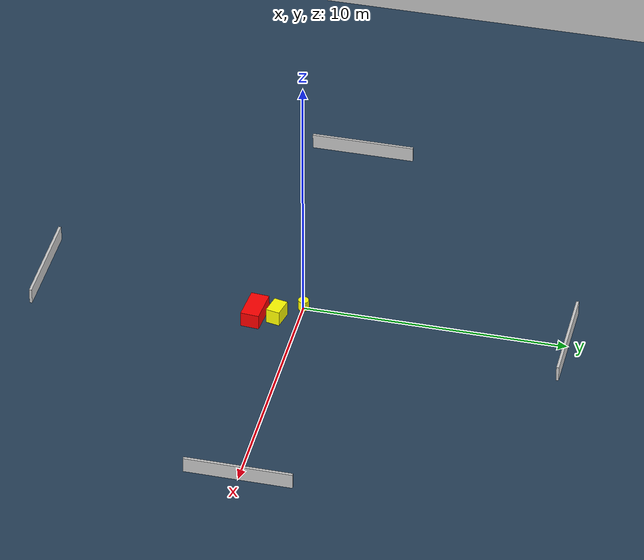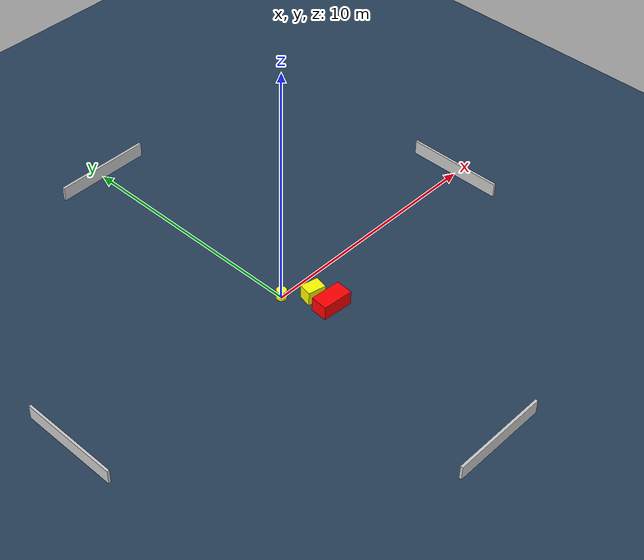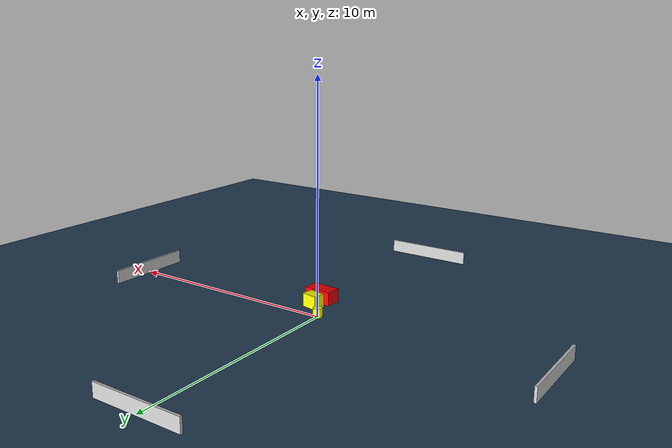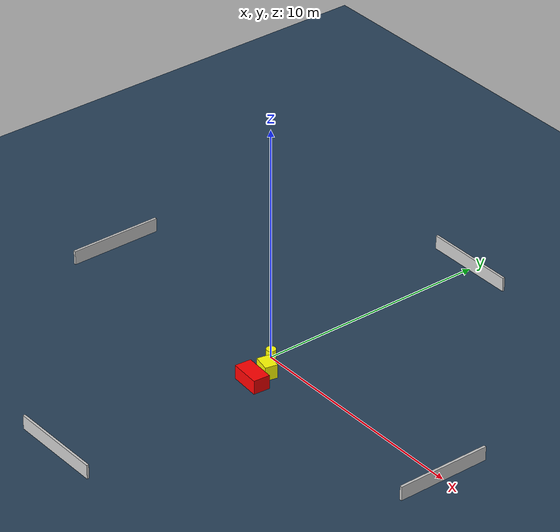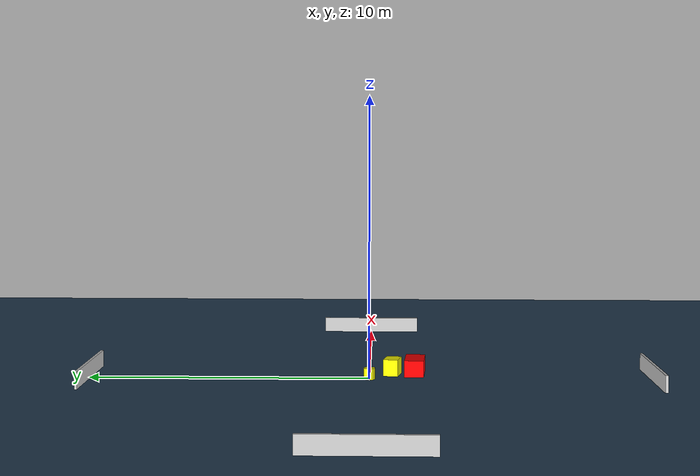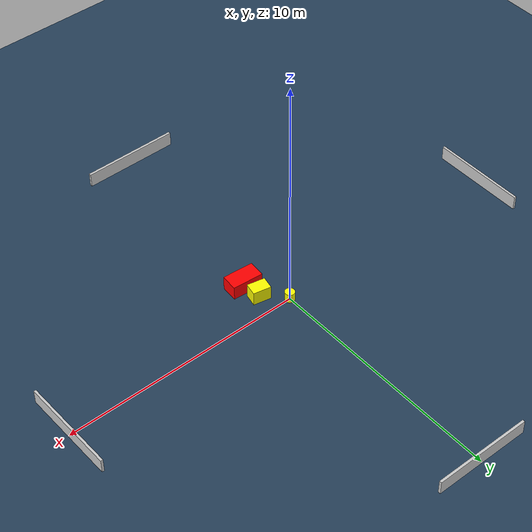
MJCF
<?xml version="1.0" ?>
<mujoco model="generated_environment">
  <option timestep="0.01" integrator="RK4" cone="elliptic"/>
  <default>
    <geom density="1"/>
  </default>
  <asset>
    <texture builtin="gradient" height="3072" name="skybox" rgb1="0.3 0.5 0.7" rgb2="0 0 0" type="skybox" width="512"/>
    <texture builtin="checker" height="300" name="groundplane" rgb1="0.2 0.3 0.4" rgb2="0.1 0.2 0.3" type="2d" width="300"/>
    <material name="groundplane" reflectance="0.2" texrepeat="5 5" texture="groundplane"/>
  </asset>
  <worldbody>
    <light dir="0 0 -1" directional="true" pos="0 0 1.5"/>
    <geom condim="3" friction="0.5 0.005 0.001" material="groundplane" name="floor" pos="0 0 0" size="0 0 0.05" type="plane"/>
    <body name="walls">
      <geom name="wall_1" condim="4" pos="-10.0 0.0 0.3" rgba="0.800000011920929 0.800000011920929 0.800000011920929 1.0" size="0.05 2.0 0.3" type="box"/>
      <geom name="wall_2" condim="4" pos="10.0 0.0 0.3" rgba="0.800000011920929 0.800000011920929 0.800000011920929 1.0" size="0.05 2.0 0.3" type="box"/>
      <geom name="wall_3" condim="4" pos="0.0 -10.0 0.3" rgba="0.800000011920929 0.800000011920929 0.800000011920929 1.0" size="2.0 0.05 0.3" type="box"/>
      <geom name="wall_4" condim="4" pos="0.0 10.0 0.3" rgba="0.800000011920929 0.800000011920929 0.800000011920929 1.0" size="2.0 0.05 0.3" type="box"/>
    </body>
    <body name="robot">
      <joint name="joint_x" type="slide" pos="0 0 0" axis="1 0 0"/>
      <joint name="joint_y" type="slide" pos="0 0 0" axis="0 1 0"/>
      <geom name="robot" type="cylinder" pos="0.0 0.0 0.2" size="0.2 0.2 0.0" mass="5.0" friction="1.0 0.005 0.0001" condim="4" rgba="1.0 1.0 0.0 1.0"/>
    </body>
    <body name="obstacle_1_movable">
      <geom name="obstacle_1_movable" condim="4" pos="0.8073585620002497 -0.825590645687486 0.3" euler="0 0 348.17449607941757" friction="0.0 0.005 0.001" rgba="1.0 1.0 0.0 1.0" size="0.3696521759478837 0.2620488089685723 0.3" type="box" mass="0.1"/>
      <joint type="free"/>
    </body>
    <body name="obstacle_2_static">
      <geom name="obstacle_2_static" condim="4" pos="0.9232629812586248 -1.6328211342745265 0.3" euler="0 0 85.53589398017601" friction="0.0 0.005 0.001" rgba="1.0 0.0 0.0 1.0" size="0.34866467364019976 0.6386008087784656 0.3" type="box"/>
    </body>
  </worldbody>
  <actuator>
    <motor name="actuator_x" joint="joint_x" gear="1" ctrlrange="-1 1"/>
    <motor name="actuator_y" joint="joint_y" gear="1" ctrlrange="-1 1"/>
  </actuator>
</mujoco>
